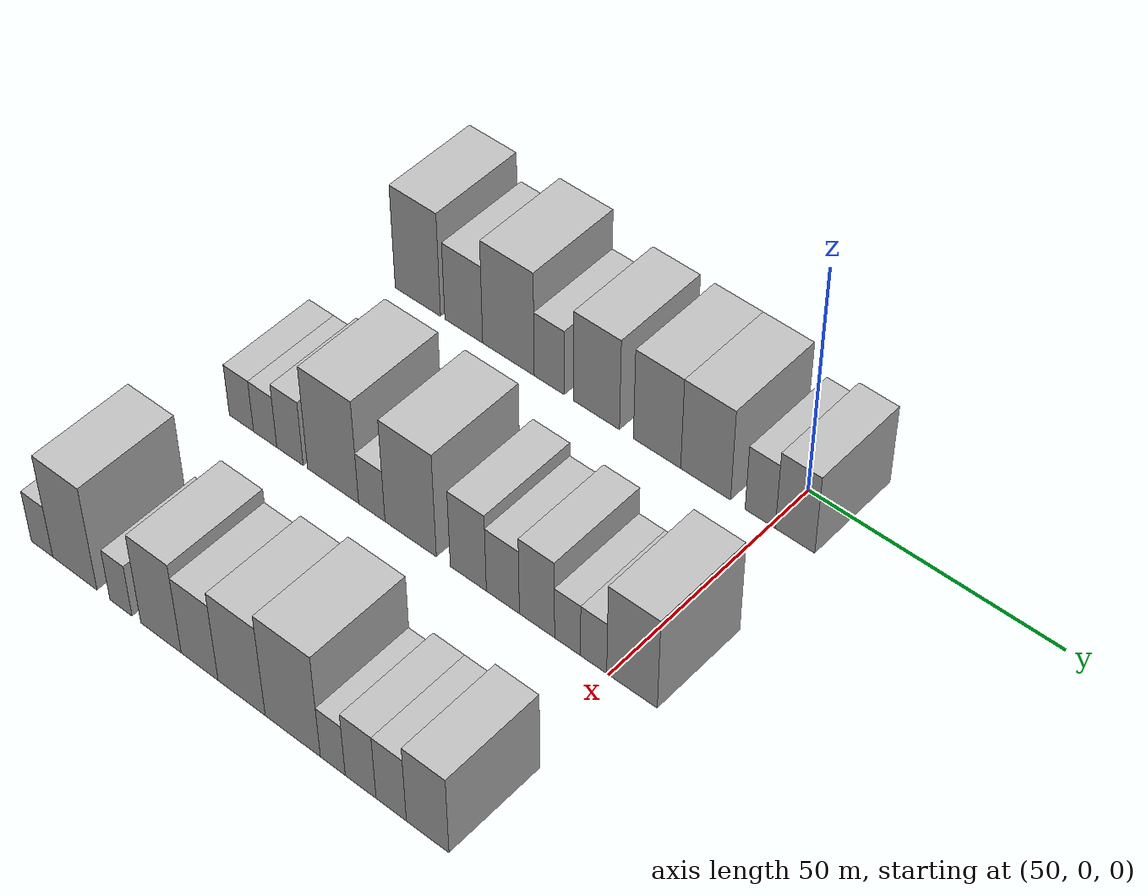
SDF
<sdf version="1.6">
 <world name="default">
  <model name="building_38">
   <static>1</static>
   <pose>50.0000 -77.3093 0 0.000000 0.000000 0.000000</pose>
   <link name="link">
    <pose>0 0 12.00 0 0 0</pose>
    <collision name="collision"><geometry><box><size>20.0000 10.6619 24.0000</size></box></geometry></collision>
    <visual name="visual">
     <cast_shadows>0</cast_shadows>
     <geometry><box><size>20.0000 10.6619 24.0000</size></box></geometry>
     <material>
      <script>
       <uri>model://HANNAS_wall/materials/scripts</uri>
       <uri>model://HANNAS_wall/materials/textures</uri>
       <name>vrc/HANNAS_wall</name>
      </script>
     </material>
    </visual>
   </link>
  </model>
  <model name="building_39">
   <static>1</static>
   <pose>50.0000 -66.5992 0 0.000000 0.000000 0.000000</pose>
   <link name="link">
    <pose>0 0 9.00 0 0 0</pose>
    <collision name="collision"><geometry><box><size>20.0000 8.7583 18.0000</size></box></geometry></collision>
    <visual name="visual">
     <cast_shadows>0</cast_shadows>
     <geometry><box><size>20.0000 8.7583 18.0000</size></box></geometry>
     <material>
      <script>
       <uri>model://HANNAS_wall/materials/scripts</uri>
       <uri>model://HANNAS_wall/materials/textures</uri>
       <name>vrc/HANNAS_wall</name>
      </script>
     </material>
    </visual>
   </link>
  </model>
  <model name="building_40">
   <static>1</static>
   <pose>50.0000 -56.3737 0 0.000000 0.000000 0.000000</pose>
   <link name="link">
    <pose>0 0 12.00 0 0 0</pose>
    <collision name="collision"><geometry><box><size>20.0000 11.6929 24.0000</size></box></geometry></collision>
    <visual name="visual">
     <cast_shadows>0</cast_shadows>
     <geometry><box><size>20.0000 11.6929 24.0000</size></box></geometry>
     <material>
      <script>
       <uri>model://HANNAS_wall/materials/scripts</uri>
       <uri>model://HANNAS_wall/materials/textures</uri>
       <name>vrc/HANNAS_wall</name>
      </script>
     </material>
    </visual>
   </link>
  </model>
  <model name="building_41">
   <static>1</static>
   <pose>50.0000 -47.1765 0 0.000000 0.000000 0.000000</pose>
   <link name="link">
    <pose>0 0 7.50 0 0 0</pose>
    <collision name="collision"><geometry><box><size>20.0000 6.7015 15.0000</size></box></geometry></collision>
    <visual name="visual">
     <cast_shadows>0</cast_shadows>
     <geometry><box><size>20.0000 6.7015 15.0000</size></box></geometry>
     <material>
      <script>
       <uri>model://HANNAS_wall/materials/scripts</uri>
       <uri>model://HANNAS_wall/materials/textures</uri>
       <name>vrc/HANNAS_wall</name>
      </script>
     </material>
    </visual>
   </link>
  </model>
  <model name="building_42">
   <static>1</static>
   <pose>50.0000 -36.7780 0 0.000000 0.000000 0.000000</pose>
   <link name="link">
    <pose>0 0 10.50 0 0 0</pose>
    <collision name="collision"><geometry><box><size>20.0000 10.0955 21.0000</size></box></geometry></collision>
    <visual name="visual">
     <cast_shadows>0</cast_shadows>
     <geometry><box><size>20.0000 10.0955 21.0000</size></box></geometry>
     <material>
      <script>
       <uri>model://HANNAS_wall/materials/scripts</uri>
       <uri>model://HANNAS_wall/materials/textures</uri>
       <name>vrc/HANNAS_wall</name>
      </script>
     </material>
    </visual>
   </link>
  </model>
  <model name="building_43">
   <static>1</static>
   <pose>50.0000 -23.6953 0 0.000000 0.000000 0.000000</pose>
   <link name="link">
    <pose>0 0 10.50 0 0 0</pose>
    <collision name="collision"><geometry><box><size>20.0000 10.0698 21.0000</size></box></geometry></collision>
    <visual name="visual">
     <cast_shadows>0</cast_shadows>
     <geometry><box><size>20.0000 10.0698 21.0000</size></box></geometry>
     <material>
      <script>
       <uri>model://HANNAS_wall/materials/scripts</uri>
       <uri>model://HANNAS_wall/materials/textures</uri>
       <name>vrc/HANNAS_wall</name>
      </script>
     </material>
    </visual>
   </link>
  </model>
  <model name="building_44">
   <static>1</static>
   <pose>50.0000 -13.4348 0 0.000000 0.000000 0.000000</pose>
   <link name="link">
    <pose>0 0 10.50 0 0 0</pose>
    <collision name="collision"><geometry><box><size>20.0000 10.4512 21.0000</size></box></geometry></collision>
    <visual name="visual">
     <cast_shadows>0</cast_shadows>
     <geometry><box><size>20.0000 10.4512 21.0000</size></box></geometry>
     <material>
      <script>
       <uri>model://HANNAS_wall/materials/scripts</uri>
       <uri>model://HANNAS_wall/materials/textures</uri>
       <name>vrc/HANNAS_wall</name>
      </script>
     </material>
    </visual>
   </link>
  </model>
  <model name="building_45">
   <static>1</static>
   <pose>50.0000 -2.1242 0 0.000000 0.000000 0.000000</pose>
   <link name="link">
    <pose>0 0 7.50 0 0 0</pose>
    <collision name="collision"><geometry><box><size>20.0000 6.1701 15.0000</size></box></geometry></collision>
    <visual name="visual">
     <cast_shadows>0</cast_shadows>
     <geometry><box><size>20.0000 6.1701 15.0000</size></box></geometry>
     <material>
      <script>
       <uri>model://HANNAS_wall/materials/scripts</uri>
       <uri>model://HANNAS_wall/materials/textures</uri>
       <name>vrc/HANNAS_wall</name>
      </script>
     </material>
    </visual>
   </link>
  </model>
  <model name="building_46">
   <static>1</static>
   <pose>50.0000 4.9469 0 0.000000 0.000000 0.000000</pose>
   <link name="link">
    <pose>0 0 9.00 0 0 0</pose>
    <collision name="collision"><geometry><box><size>20.0000 7.9721 18.0000</size></box></geometry></collision>
    <visual name="visual">
     <cast_shadows>0</cast_shadows>
     <geometry><box><size>20.0000 7.9721 18.0000</size></box></geometry>
     <material>
      <script>
       <uri>model://HANNAS_wall/materials/scripts</uri>
       <uri>model://HANNAS_wall/materials/textures</uri>
       <name>vrc/HANNAS_wall</name>
      </script>
     </material>
    </visual>
   </link>
  </model>
  <model name="building_125">
   <static>1</static>
   <pose>90.0000 -79.8986 0 0.000000 0.000000 0.000000</pose>
   <link name="link">
    <pose>0 0 6.00 0 0 0</pose>
    <collision name="collision"><geometry><box><size>20.0000 5.6722 12.0000</size></box></geometry></collision>
    <visual name="visual">
     <cast_shadows>0</cast_shadows>
     <geometry><box><size>20.0000 5.6722 12.0000</size></box></geometry>
     <material>
      <script>
       <uri>model://HANNAS_wall/materials/scripts</uri>
       <uri>model://HANNAS_wall/materials/textures</uri>
       <name>vrc/HANNAS_wall</name>
      </script>
     </material>
    </visual>
   </link>
  </model>
  <model name="building_126">
   <static>1</static>
   <pose>90.0000 -74.3514 0 0.000000 0.000000 0.000000</pose>
   <link name="link">
    <pose>0 0 6.00 0 0 0</pose>
    <collision name="collision"><geometry><box><size>20.0000 5.4222 12.0000</size></box></geometry></collision>
    <visual name="visual">
     <cast_shadows>0</cast_shadows>
     <geometry><box><size>20.0000 5.4222 12.0000</size></box></geometry>
     <material>
      <script>
       <uri>model://HANNAS_wall/materials/scripts</uri>
       <uri>model://HANNAS_wall/materials/textures</uri>
       <name>vrc/HANNAS_wall</name>
      </script>
     </material>
    </visual>
   </link>
  </model>
  <model name="building_127">
   <static>1</static>
   <pose>90.0000 -68.6006 0 0.000000 0.000000 0.000000</pose>
   <link name="link">
    <pose>0 0 7.50 0 0 0</pose>
    <collision name="collision"><geometry><box><size>20.0000 6.0794 15.0000</size></box></geometry></collision>
    <visual name="visual">
     <cast_shadows>0</cast_shadows>
     <geometry><box><size>20.0000 6.0794 15.0000</size></box></geometry>
     <material>
      <script>
       <uri>model://HANNAS_wall/materials/scripts</uri>
       <uri>model://HANNAS_wall/materials/textures</uri>
       <name>vrc/HANNAS_wall</name>
      </script>
     </material>
    </visual>
   </link>
  </model>
  <model name="building_128">
   <static>1</static>
   <pose>90.0000 -58.7917 0 0.000000 0.000000 0.000000</pose>
   <link name="link">
    <pose>0 0 12.00 0 0 0</pose>
    <collision name="collision"><geometry><box><size>20.0000 11.5384 24.0000</size></box></geometry></collision>
    <visual name="visual">
     <cast_shadows>0</cast_shadows>
     <geometry><box><size>20.0000 11.5384 24.0000</size></box></geometry>
     <material>
      <script>
       <uri>model://HANNAS_wall/materials/scripts</uri>
       <uri>model://HANNAS_wall/materials/textures</uri>
       <name>vrc/HANNAS_wall</name>
      </script>
     </material>
    </visual>
   </link>
  </model>
  <model name="building_129">
   <static>1</static>
   <pose>90.0000 -50.0943 0 0.000000 0.000000 0.000000</pose>
   <link name="link">
    <pose>0 0 6.00 0 0 0</pose>
    <collision name="collision"><geometry><box><size>20.0000 5.8565 12.0000</size></box></geometry></collision>
    <visual name="visual">
     <cast_shadows>0</cast_shadows>
     <geometry><box><size>20.0000 5.8565 12.0000</size></box></geometry>
     <material>
      <script>
       <uri>model://HANNAS_wall/materials/scripts</uri>
       <uri>model://HANNAS_wall/materials/textures</uri>
       <name>vrc/HANNAS_wall</name>
      </script>
     </material>
    </visual>
   </link>
  </model>
  <model name="building_130">
   <static>1</static>
   <pose>90.0000 -41.5544 0 0.000000 0.000000 0.000000</pose>
   <link name="link">
    <pose>0 0 12.00 0 0 0</pose>
    <collision name="collision"><geometry><box><size>20.0000 11.2233 24.0000</size></box></geometry></collision>
    <visual name="visual">
     <cast_shadows>0</cast_shadows>
     <geometry><box><size>20.0000 11.2233 24.0000</size></box></geometry>
     <material>
      <script>
       <uri>model://HANNAS_wall/materials/scripts</uri>
       <uri>model://HANNAS_wall/materials/textures</uri>
       <name>vrc/HANNAS_wall</name>
      </script>
     </material>
    </visual>
   </link>
  </model>
  <model name="building_131">
   <static>1</static>
   <pose>90.0000 -29.0975 0 0.000000 0.000000 0.000000</pose>
   <link name="link">
    <pose>0 0 9.00 0 0 0</pose>
    <collision name="collision"><geometry><box><size>20.0000 7.6905 18.0000</size></box></geometry></collision>
    <visual name="visual">
     <cast_shadows>0</cast_shadows>
     <geometry><box><size>20.0000 7.6905 18.0000</size></box></geometry>
     <material>
      <script>
       <uri>model://HANNAS_wall/materials/scripts</uri>
       <uri>model://HANNAS_wall/materials/textures</uri>
       <name>vrc/HANNAS_wall</name>
      </script>
     </material>
    </visual>
   </link>
  </model>
  <model name="building_132">
   <static>1</static>
   <pose>90.0000 -21.7808 0 0.000000 0.000000 0.000000</pose>
   <link name="link">
    <pose>0 0 7.50 0 0 0</pose>
    <collision name="collision"><geometry><box><size>20.0000 6.9428 15.0000</size></box></geometry></collision>
    <visual name="visual">
     <cast_shadows>0</cast_shadows>
     <geometry><box><size>20.0000 6.9428 15.0000</size></box></geometry>
     <material>
      <script>
       <uri>model://HANNAS_wall/materials/scripts</uri>
       <uri>model://HANNAS_wall/materials/textures</uri>
       <name>vrc/HANNAS_wall</name>
      </script>
     </material>
    </visual>
   </link>
  </model>
  <model name="building_133">
   <static>1</static>
   <pose>90.0000 -14.6648 0 0.000000 0.000000 0.000000</pose>
   <link name="link">
    <pose>0 0 9.00 0 0 0</pose>
    <collision name="collision"><geometry><box><size>20.0000 7.2892 18.0000</size></box></geometry></collision>
    <visual name="visual">
     <cast_shadows>0</cast_shadows>
     <geometry><box><size>20.0000 7.2892 18.0000</size></box></geometry>
     <material>
      <script>
       <uri>model://HANNAS_wall/materials/scripts</uri>
       <uri>model://HANNAS_wall/materials/textures</uri>
       <name>vrc/HANNAS_wall</name>
      </script>
     </material>
    </visual>
   </link>
  </model>
  <model name="building_134">
   <static>1</static>
   <pose>90.0000 -8.3764 0 0.000000 0.000000 0.000000</pose>
   <link name="link">
    <pose>0 0 6.00 0 0 0</pose>
    <collision name="collision"><geometry><box><size>20.0000 5.2877 12.0000</size></box></geometry></collision>
    <visual name="visual">
     <cast_shadows>0</cast_shadows>
     <geometry><box><size>20.0000 5.2877 12.0000</size></box></geometry>
     <material>
      <script>
       <uri>model://HANNAS_wall/materials/scripts</uri>
       <uri>model://HANNAS_wall/materials/textures</uri>
       <name>vrc/HANNAS_wall</name>
      </script>
     </material>
    </visual>
   </link>
  </model>
  <model name="building_135">
   <static>1</static>
   <pose>90.0000 -3.0791 0 0.000000 0.000000 0.000000</pose>
   <link name="link">
    <pose>0 0 6.00 0 0 0</pose>
    <collision name="collision"><geometry><box><size>20.0000 5.3068 12.0000</size></box></geometry></collision>
    <visual name="visual">
     <cast_shadows>0</cast_shadows>
     <geometry><box><size>20.0000 5.3068 12.0000</size></box></geometry>
     <material>
      <script>
       <uri>model://HANNAS_wall/materials/scripts</uri>
       <uri>model://HANNAS_wall/materials/textures</uri>
       <name>vrc/HANNAS_wall</name>
      </script>
     </material>
    </visual>
   </link>
  </model>
  <model name="building_136">
   <static>1</static>
   <pose>90.0000 4.6169 0 0.000000 0.000000 0.000000</pose>
   <link name="link">
    <pose>0 0 10.50 0 0 0</pose>
    <collision name="collision"><geometry><box><size>20.0000 10.0852 21.0000</size></box></geometry></collision>
    <visual name="visual">
     <cast_shadows>0</cast_shadows>
     <geometry><box><size>20.0000 10.0852 21.0000</size></box></geometry>
     <material>
      <script>
       <uri>model://HANNAS_wall/materials/scripts</uri>
       <uri>model://HANNAS_wall/materials/textures</uri>
       <name>vrc/HANNAS_wall</name>
      </script>
     </material>
    </visual>
   </link>
  </model>
  <model name="building_200">
   <static>1</static>
   <pose>130.0000 -84.3700 0 0.000000 0.000000 0.000000</pose>
   <link name="link">
    <pose>0 0 6.00 0 0 0</pose>
    <collision name="collision"><geometry><box><size>20.0000 5.0560 12.0000</size></box></geometry></collision>
    <visual name="visual">
     <cast_shadows>0</cast_shadows>
     <geometry><box><size>20.0000 5.0560 12.0000</size></box></geometry>
     <material>
      <script>
       <uri>model://HANNAS_wall/materials/scripts</uri>
       <uri>model://HANNAS_wall/materials/textures</uri>
       <name>vrc/HANNAS_wall</name>
      </script>
     </material>
    </visual>
   </link>
  </model>
  <model name="building_201">
   <static>1</static>
   <pose>130.0000 -76.6965 0 0.000000 0.000000 0.000000</pose>
   <link name="link">
    <pose>0 0 12.00 0 0 0</pose>
    <collision name="collision"><geometry><box><size>20.0000 10.2911 24.0000</size></box></geometry></collision>
    <visual name="visual">
     <cast_shadows>0</cast_shadows>
     <geometry><box><size>20.0000 10.2911 24.0000</size></box></geometry>
     <material>
      <script>
       <uri>model://HANNAS_wall/materials/scripts</uri>
       <uri>model://HANNAS_wall/materials/textures</uri>
       <name>vrc/HANNAS_wall</name>
      </script>
     </material>
    </visual>
   </link>
  </model>
  <model name="building_202">
   <static>1</static>
   <pose>130.0000 -66.0377 0 0.000000 0.000000 0.000000</pose>
   <link name="link">
    <pose>0 0 6.00 0 0 0</pose>
    <collision name="collision"><geometry><box><size>20.0000 5.0266 12.0000</size></box></geometry></collision>
    <visual name="visual">
     <cast_shadows>0</cast_shadows>
     <geometry><box><size>20.0000 5.0266 12.0000</size></box></geometry>
     <material>
      <script>
       <uri>model://HANNAS_wall/materials/scripts</uri>
       <uri>model://HANNAS_wall/materials/textures</uri>
       <name>vrc/HANNAS_wall</name>
      </script>
     </material>
    </visual>
   </link>
  </model>
  <model name="building_203">
   <static>1</static>
   <pose>130.0000 -56.9966 0 0.000000 0.000000 0.000000</pose>
   <link name="link">
    <pose>0 0 10.50 0 0 0</pose>
    <collision name="collision"><geometry><box><size>20.0000 9.0557 21.0000</size></box></geometry></collision>
    <visual name="visual">
     <cast_shadows>0</cast_shadows>
     <geometry><box><size>20.0000 9.0557 21.0000</size></box></geometry>
     <material>
      <script>
       <uri>model://HANNAS_wall/materials/scripts</uri>
       <uri>model://HANNAS_wall/materials/textures</uri>
       <name>vrc/HANNAS_wall</name>
      </script>
     </material>
    </visual>
   </link>
  </model>
  <model name="building_204">
   <static>1</static>
   <pose>130.0000 -48.4132 0 0.000000 0.000000 0.000000</pose>
   <link name="link">
    <pose>0 0 9.00 0 0 0</pose>
    <collision name="collision"><geometry><box><size>20.0000 8.1110 18.0000</size></box></geometry></collision>
    <visual name="visual">
     <cast_shadows>0</cast_shadows>
     <geometry><box><size>20.0000 8.1110 18.0000</size></box></geometry>
     <material>
      <script>
       <uri>model://HANNAS_wall/materials/scripts</uri>
       <uri>model://HANNAS_wall/materials/textures</uri>
       <name>vrc/HANNAS_wall</name>
      </script>
     </material>
    </visual>
   </link>
  </model>
  <model name="building_205">
   <static>1</static>
   <pose>130.0000 -39.2696 0 0.000000 0.000000 0.000000</pose>
   <link name="link">
    <pose>0 0 10.50 0 0 0</pose>
    <collision name="collision"><geometry><box><size>20.0000 10.1763 21.0000</size></box></geometry></collision>
    <visual name="visual">
     <cast_shadows>0</cast_shadows>
     <geometry><box><size>20.0000 10.1763 21.0000</size></box></geometry>
     <material>
      <script>
       <uri>model://HANNAS_wall/materials/scripts</uri>
       <uri>model://HANNAS_wall/materials/textures</uri>
       <name>vrc/HANNAS_wall</name>
      </script>
     </material>
    </visual>
   </link>
  </model>
  <model name="building_206">
   <static>1</static>
   <pose>130.0000 -28.3584 0 0.000000 0.000000 0.000000</pose>
   <link name="link">
    <pose>0 0 12.00 0 0 0</pose>
    <collision name="collision"><geometry><box><size>20.0000 11.6463 24.0000</size></box></geometry></collision>
    <visual name="visual">
     <cast_shadows>0</cast_shadows>
     <geometry><box><size>20.0000 11.6463 24.0000</size></box></geometry>
     <material>
      <script>
       <uri>model://HANNAS_wall/materials/scripts</uri>
       <uri>model://HANNAS_wall/materials/textures</uri>
       <name>vrc/HANNAS_wall</name>
      </script>
     </material>
    </visual>
   </link>
  </model>
  <model name="building_207">
   <static>1</static>
   <pose>130.0000 -19.9543 0 0.000000 0.000000 0.000000</pose>
   <link name="link">
    <pose>0 0 6.00 0 0 0</pose>
    <collision name="collision"><geometry><box><size>20.0000 5.1619 12.0000</size></box></geometry></collision>
    <visual name="visual">
     <cast_shadows>0</cast_shadows>
     <geometry><box><size>20.0000 5.1619 12.0000</size></box></geometry>
     <material>
      <script>
       <uri>model://HANNAS_wall/materials/scripts</uri>
       <uri>model://HANNAS_wall/materials/textures</uri>
       <name>vrc/HANNAS_wall</name>
      </script>
     </material>
    </visual>
   </link>
  </model>
  <model name="building_208">
   <static>1</static>
   <pose>130.0000 -14.2148 0 0.000000 0.000000 0.000000</pose>
   <link name="link">
    <pose>0 0 7.50 0 0 0</pose>
    <collision name="collision"><geometry><box><size>20.0000 6.3172 15.0000</size></box></geometry></collision>
    <visual name="visual">
     <cast_shadows>0</cast_shadows>
     <geometry><box><size>20.0000 6.3172 15.0000</size></box></geometry>
     <material>
      <script>
       <uri>model://HANNAS_wall/materials/scripts</uri>
       <uri>model://HANNAS_wall/materials/textures</uri>
       <name>vrc/HANNAS_wall</name>
      </script>
     </material>
    </visual>
   </link>
  </model>
  <model name="building_209">
   <static>1</static>
   <pose>130.0000 -7.9917 0 0.000000 0.000000 0.000000</pose>
   <link name="link">
    <pose>0 0 7.50 0 0 0</pose>
    <collision name="collision"><geometry><box><size>20.0000 6.1291 15.0000</size></box></geometry></collision>
    <visual name="visual">
     <cast_shadows>0</cast_shadows>
     <geometry><box><size>20.0000 6.1291 15.0000</size></box></geometry>
     <material>
      <script>
       <uri>model://HANNAS_wall/materials/scripts</uri>
       <uri>model://HANNAS_wall/materials/textures</uri>
       <name>vrc/HANNAS_wall</name>
      </script>
     </material>
    </visual>
   </link>
  </model>
  <model name="building_210">
   <static>1</static>
   <pose>130.0000 -0.6829 0 0.000000 0.000000 0.000000</pose>
   <link name="link">
    <pose>0 0 9.00 0 0 0</pose>
    <collision name="collision"><geometry><box><size>20.0000 8.4884 18.0000</size></box></geometry></collision>
    <visual name="visual">
     <cast_shadows>0</cast_shadows>
     <geometry><box><size>20.0000 8.4884 18.0000</size></box></geometry>
     <material>
      <script>
       <uri>model://HANNAS_wall/materials/scripts</uri>
       <uri>model://HANNAS_wall/materials/textures</uri>
       <name>vrc/HANNAS_wall</name>
      </script>
     </material>
    </visual>
   </link>
  </model>
 </world>
</sdf>
